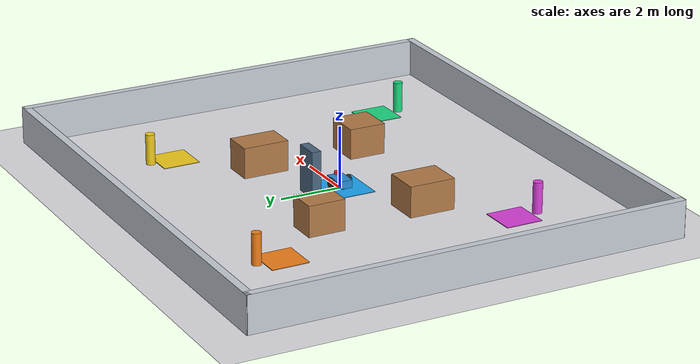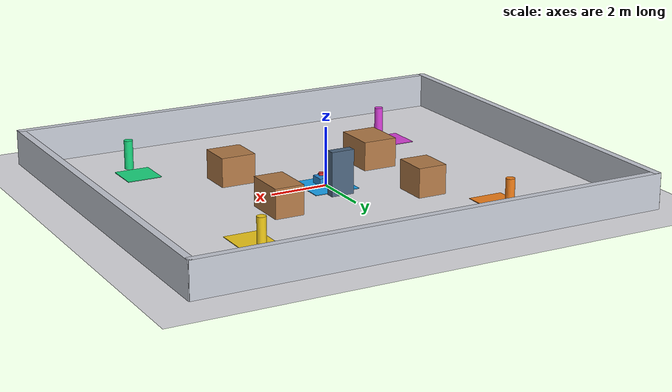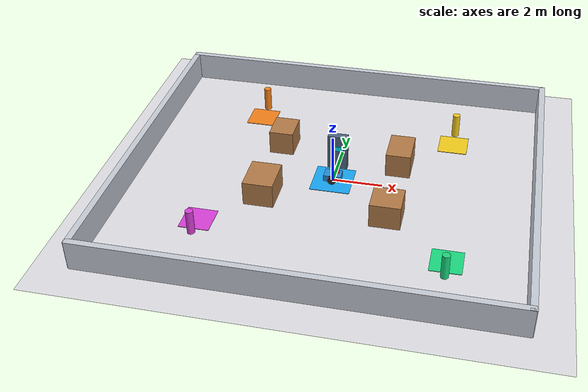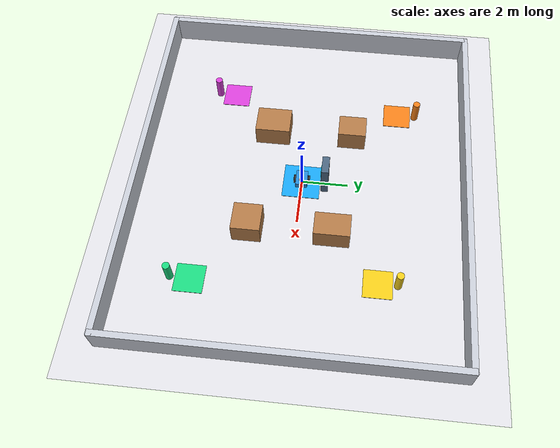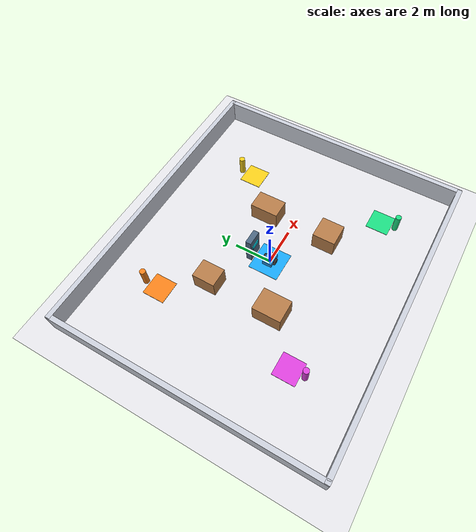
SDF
<?xml version="1.0" ?>
<sdf version="1.9">
  <world name="problem1_battery_world">
    <physics name="1ms" type="ignored">
      <max_step_size>0.001</max_step_size>
      <real_time_factor>1.0</real_time_factor>
    </physics>
    <plugin filename="gz-sim-physics-system" name="gz::sim::systems::Physics"/>
    <plugin filename="gz-sim-user-commands-system" name="gz::sim::systems::UserCommands"/>
    <plugin filename="gz-sim-scene-broadcaster-system" name="gz::sim::systems::SceneBroadcaster"/>
    <plugin filename="gz-sim-sensors-system" name="gz::sim::systems::Sensors">
      <render_engine>ogre</render_engine>
    </plugin>

    <scene>
      <ambient>1.0 1.0 1.0 1</ambient>
      <background>0.90 0.94 0.98 1</background>
      <shadows>false</shadows>
    </scene>
    <light type="directional" name="sun">
      <diffuse>1 1 1 1</diffuse>
      <specular>0.4 0.4 0.4 1</specular>
      <direction>-0.5 0.5 -1</direction>
    </light>

    <!-- Ground Floor -->
    <model name="ground_plane">
      <static>true</static>
      <link name="link">
        <collision name="collision"><geometry><plane><normal>0 0 1</normal><size>40 40</size></plane></geometry></collision>
        <visual name="visual">
          <geometry><plane><normal>0 0 1</normal><size>40 40</size></plane></geometry>
          <material><ambient>0.88 0.88 0.90 1</ambient><diffuse>0.88 0.88 0.90 1</diffuse></material>
        </visual>
      </link>
    </model>

    <!-- Boundary Walls with Ambient + Diffuse -->
    <model name="wall_north">
      <static>true</static><pose>0 7.0 0.6 0 0 0</pose>
      <link name="link">
        <visual name="v"><geometry><box><size>16.2 0.25 1.2</size></box></geometry><material><ambient>0.78 0.80 0.84 1</ambient><diffuse>0.78 0.80 0.84 1</diffuse></material></visual>
        <collision name="c"><geometry><box><size>16.2 0.25 1.2</size></box></geometry></collision>
      </link>
    </model>
    <model name="wall_south">
      <static>true</static><pose>0 -7.0 0.6 0 0 0</pose>
      <link name="link">
        <visual name="v"><geometry><box><size>16.2 0.25 1.2</size></box></geometry><material><ambient>0.78 0.80 0.84 1</ambient><diffuse>0.78 0.80 0.84 1</diffuse></material></visual>
        <collision name="c"><geometry><box><size>16.2 0.25 1.2</size></box></geometry></collision>
      </link>
    </model>
    <model name="wall_east">
      <static>true</static><pose>8.0 0 0.6 0 0 0</pose>
      <link name="link">
        <visual name="v"><geometry><box><size>0.25 14.2 1.2</size></box></geometry><material><ambient>0.78 0.80 0.84 1</ambient><diffuse>0.78 0.80 0.84 1</diffuse></material></visual>
        <collision name="c"><geometry><box><size>0.25 14.2 1.2</size></box></geometry></collision>
      </link>
    </model>
    <model name="wall_west">
      <static>true</static><pose>-8.0 0 0.6 0 0 0</pose>
      <link name="link">
        <visual name="v"><geometry><box><size>0.25 14.2 1.2</size></box></geometry><material><ambient>0.78 0.80 0.84 1</ambient><diffuse>0.78 0.80 0.84 1</diffuse></material></visual>
        <collision name="c"><geometry><box><size>0.25 14.2 1.2</size></box></geometry></collision>
      </link>
    </model>

    <!-- Central Charging Station Dock -->
    <model name="charging_dock_pad">
      <static>true</static><pose>0.0 0.0 0.01 0 0 0</pose>
      <link name="link">
        <visual name="v"><geometry><box><size>1.6 1.6 0.02</size></box></geometry>
          <material><ambient>0.1 0.65 0.95 1</ambient><diffuse>0.1 0.65 0.95 1</diffuse></material>
        </visual>
      </link>
    </model>
    <model name="charging_dock_pylon">
      <static>true</static><pose>0.0 1.0 0.75 0 0 0</pose>
      <link name="link">
        <visual name="v"><geometry><box><size>0.8 0.3 1.5</size></box></geometry>
          <material><ambient>0.3 0.4 0.5 1</ambient><diffuse>0.3 0.4 0.5 1</diffuse></material>
        </visual>
        <visual name="glow"><pose>0 -0.16 0.2 0 0 0</pose><geometry><box><size>0.5 0.05 0.2</size></box></geometry>
          <material><ambient>0.0 0.9 1.0 1</ambient><diffuse>0.0 0.9 1.0 1</diffuse></material>
        </visual>
        <collision name="c"><geometry><box><size>0.8 0.3 1.5</size></box></geometry></collision>
      </link>
    </model>

    <!-- Task Stations -->
    <!-- Task Station 1: Inspection A (Yellow) -->
    <model name="task_station_1">
      <static>true</static><pose>4.5 3.5 0.01 0 0 0</pose>
      <link name="link">
        <visual name="pad"><geometry><box><size>1.2 1.2 0.02</size></box></geometry>
          <material><ambient>0.95 0.8 0.1 1</ambient><diffuse>0.95 0.8 0.1 1</diffuse></material>
        </visual>
        <visual name="pillar"><pose>0 0.8 0.5 0 0 0</pose><geometry><cylinder><radius>0.15</radius><length>1.0</length></cylinder></geometry>
          <material><ambient>0.95 0.8 0.1 1</ambient><diffuse>0.95 0.8 0.1 1</diffuse></material>
        </visual>
        <collision name="c"><pose>0 0.8 0.5 0 0 0</pose><geometry><cylinder><radius>0.15</radius><length>1.0</length></cylinder></geometry></collision>
      </link>
    </model>

    <!-- Task Station 2: Assembly B (Cyan) -->
    <model name="task_station_2">
      <static>true</static><pose>5.0 -4.0 0.01 0 0 0</pose>
      <link name="link">
        <visual name="pad"><geometry><box><size>1.2 1.2 0.02</size></box></geometry>
          <material><ambient>0.1 0.85 0.5 1</ambient><diffuse>0.1 0.85 0.5 1</diffuse></material>
        </visual>
        <visual name="pillar"><pose>0 -0.8 0.5 0 0 0</pose><geometry><cylinder><radius>0.15</radius><length>1.0</length></cylinder></geometry>
          <material><ambient>0.1 0.85 0.5 1</ambient><diffuse>0.1 0.85 0.5 1</diffuse></material>
        </visual>
        <collision name="c"><pose>0 -0.8 0.5 0 0 0</pose><geometry><cylinder><radius>0.15</radius><length>1.0</length></cylinder></geometry></collision>
      </link>
    </model>

    <!-- Task Station 3: Storage C (Magenta) -->
    <model name="task_station_3">
      <static>true</static><pose>-4.5 -3.5 0.01 0 0 0</pose>
      <link name="link">
        <visual name="pad"><geometry><box><size>1.2 1.2 0.02</size></box></geometry>
          <material><ambient>0.85 0.25 0.85 1</ambient><diffuse>0.85 0.25 0.85 1</diffuse></material>
        </visual>
        <visual name="pillar"><pose>0 -0.8 0.5 0 0 0</pose><geometry><cylinder><radius>0.15</radius><length>1.0</length></cylinder></geometry>
          <material><ambient>0.85 0.25 0.85 1</ambient><diffuse>0.85 0.25 0.85 1</diffuse></material>
        </visual>
        <collision name="c"><pose>0 -0.8 0.5 0 0 0</pose><geometry><cylinder><radius>0.15</radius><length>1.0</length></cylinder></geometry></collision>
      </link>
    </model>

    <!-- Task Station 4: Quality D (Orange) -->
    <model name="task_station_4">
      <static>true</static><pose>-4.0 4.0 0.01 0 0 0</pose>
      <link name="link">
        <visual name="pad"><geometry><box><size>1.2 1.2 0.02</size></box></geometry>
          <material><ambient>0.95 0.5 0.1 1</ambient><diffuse>0.95 0.5 0.1 1</diffuse></material>
        </visual>
        <visual name="pillar"><pose>0 0.8 0.5 0 0 0</pose><geometry><cylinder><radius>0.15</radius><length>1.0</length></cylinder></geometry>
          <material><ambient>0.95 0.5 0.1 1</ambient><diffuse>0.95 0.5 0.1 1</diffuse></material>
        </visual>
        <collision name="c"><pose>0 0.8 0.5 0 0 0</pose><geometry><cylinder><radius>0.15</radius><length>1.0</length></cylinder></geometry></collision>
      </link>
    </model>

    <!-- Warehouse Interior Obstacles (Warm Cargo Boxes) -->
    <model name="crate_obs_1">
      <static>true</static><pose>2.5 1.5 0.5 0 0 0</pose>
      <link name="link">
        <visual name="v"><geometry><box><size>1.0 1.5 1.0</size></box></geometry><material><ambient>0.7 0.48 0.28 1</ambient><diffuse>0.7 0.48 0.28 1</diffuse></material></visual>
        <collision name="c"><geometry><box><size>1.0 1.5 1.0</size></box></geometry></collision>
      </link>
    </model>
    <model name="crate_obs_2">
      <static>true</static><pose>2.5 -2.0 0.5 0 0 0</pose>
      <link name="link">
        <visual name="v"><geometry><box><size>1.2 1.2 1.0</size></box></geometry><material><ambient>0.7 0.48 0.28 1</ambient><diffuse>0.7 0.48 0.28 1</diffuse></material></visual>
        <collision name="c"><geometry><box><size>1.2 1.2 1.0</size></box></geometry></collision>
      </link>
    </model>
    <model name="crate_obs_3">
      <static>true</static><pose>-2.5 -1.5 0.5 0 0 0</pose>
      <link name="link">
        <visual name="v"><geometry><box><size>1.2 1.5 1.0</size></box></geometry><material><ambient>0.7 0.48 0.28 1</ambient><diffuse>0.7 0.48 0.28 1</diffuse></material></visual>
        <collision name="c"><geometry><box><size>1.2 1.5 1.0</size></box></geometry></collision>
      </link>
    </model>
    <model name="crate_obs_4">
      <static>true</static><pose>-2.5 2.0 0.5 0 0 0</pose>
      <link name="link">
        <visual name="v"><geometry><box><size>1.0 1.2 1.0</size></box></geometry><material><ambient>0.7 0.48 0.28 1</ambient><diffuse>0.7 0.48 0.28 1</diffuse></material></visual>
        <collision name="c"><geometry><box><size>1.0 1.2 1.0</size></box></geometry></collision>
      </link>
    </model>

    <!-- Mobile Robot with Dual Casters -->
    <model name="battery_robot">
      <pose>0.0 0.0 0.22 0 0 0</pose>
      <link name="base_link">
        <inertial><mass>1.2</mass><inertia><ixx>0.04</ixx><iyy>0.08</iyy><izz>0.10</izz></inertia></inertial>
        <collision name="c"><geometry><box><size>0.7 0.5 0.25</size></box></geometry></collision>
        <visual name="v"><geometry><box><size>0.7 0.5 0.25</size></box></geometry>
          <material><ambient>0.15 0.55 0.85 1</ambient><diffuse>0.15 0.55 0.85 1</diffuse></material>
        </visual>
      </link>

      <link name="left_wheel">
        <pose>0 0.30 -0.02 0 0 0</pose>
        <inertial><mass>0.2</mass><inertia><ixx>0.003</ixx><iyy>0.003</iyy><izz>0.003</izz></inertia></inertial>
        <collision name="c"><pose>0 0 0 1.5708 0 0</pose><geometry><cylinder><radius>0.18</radius><length>0.08</length></cylinder></geometry>
          <surface><friction><ode><mu>10.0</mu><mu2>10.0</mu2></ode></friction></surface>
        </collision>
        <visual name="v"><pose>0 0 0 1.5708 0 0</pose><geometry><cylinder><radius>0.18</radius><length>0.08</length></cylinder></geometry>
          <material><ambient>0.15 0.15 0.15 1</ambient><diffuse>0.15 0.15 0.15 1</diffuse></material>
        </visual>
      </link>

      <link name="right_wheel">
        <pose>0 -0.30 -0.02 0 0 0</pose>
        <inertial><mass>0.2</mass><inertia><ixx>0.003</ixx><iyy>0.003</iyy><izz>0.003</izz></inertia></inertial>
        <collision name="c"><pose>0 0 0 1.5708 0 0</pose><geometry><cylinder><radius>0.18</radius><length>0.08</length></cylinder></geometry>
          <surface><friction><ode><mu>10.0</mu><mu2>10.0</mu2></ode></friction></surface>
        </collision>
        <visual name="v"><pose>0 0 0 1.5708 0 0</pose><geometry><cylinder><radius>0.18</radius><length>0.08</length></cylinder></geometry>
          <material><ambient>0.15 0.15 0.15 1</ambient><diffuse>0.15 0.15 0.15 1</diffuse></material>
        </visual>
      </link>

      <link name="caster_front">
        <pose>0.25 0 -0.10 0 0 0</pose>
        <inertial><mass>0.05</mass><inertia><ixx>0.0001</ixx><iyy>0.0001</iyy><izz>0.0001</izz></inertia></inertial>
        <collision name="c"><geometry><sphere><radius>0.08</radius></sphere></geometry>
          <surface><friction><ode><mu>0.01</mu><mu2>0.01</mu2></ode></friction></surface>
        </collision>
        <visual name="v"><geometry><sphere><radius>0.08</radius></sphere></geometry>
          <material><ambient>0.3 0.3 0.3 1</ambient><diffuse>0.3 0.3 0.3 1</diffuse></material>
        </visual>
      </link>

      <link name="caster_rear">
        <pose>-0.25 0 -0.10 0 0 0</pose>
        <inertial><mass>0.05</mass><inertia><ixx>0.0001</ixx><iyy>0.0001</iyy><izz>0.0001</izz></inertia></inertial>
        <collision name="c"><geometry><sphere><radius>0.08</radius></sphere></geometry>
          <surface><friction><ode><mu>0.01</mu><mu2>0.01</mu2></ode></friction></surface>
        </collision>
        <visual name="v"><geometry><sphere><radius>0.08</radius></sphere></geometry>
          <material><ambient>0.3 0.3 0.3 1</ambient><diffuse>0.3 0.3 0.3 1</diffuse></material>
        </visual>
      </link>

      <link name="lidar_link">
        <pose>0.18 0 0.22 0 0 0</pose>
        <inertial><mass>0.08</mass><inertia><ixx>0.0001</ixx><iyy>0.0001</iyy><izz>0.0001</izz></inertia></inertial>
        <visual name="v"><geometry><cylinder><radius>0.09</radius><length>0.08</length></cylinder></geometry>
          <material><ambient>0.9 0.2 0.2 1</ambient><diffuse>0.9 0.2 0.2 1</diffuse></material>
        </visual>
        <sensor name="lidar" type="gpu_lidar">
          <always_on>true</always_on>
          <visualize>true</visualize>
          <update_rate>10</update_rate>
          <topic>/problem1/scan</topic>
          <lidar>
            <scan>
              <horizontal>
                <samples>180</samples>
                <resolution>1</resolution>
                <min_angle>-3.14159</min_angle>
                <max_angle>3.14159</max_angle>
              </horizontal>
            </scan>
            <range><min>0.25</min><max>10.0</max><resolution>0.03</resolution></range>
          </lidar>
        </sensor>
      </link>

      <joint name="lwj" type="revolute"><parent>base_link</parent><child>left_wheel</child><axis><xyz>0 1 0</xyz></axis></joint>
      <joint name="rwj" type="revolute"><parent>base_link</parent><child>right_wheel</child><axis><xyz>0 1 0</xyz></axis></joint>
      <joint name="cfj" type="fixed"><parent>base_link</parent><child>caster_front</child></joint>
      <joint name="crj" type="fixed"><parent>base_link</parent><child>caster_rear</child></joint>
      <joint name="lj" type="fixed"><parent>base_link</parent><child>lidar_link</child></joint>

      <plugin filename="gz-sim-diff-drive-system" name="gz::sim::systems::DiffDrive">
        <left_joint>lwj</left_joint>
        <right_joint>rwj</right_joint>
        <wheel_separation>0.60</wheel_separation>
        <wheel_radius>0.18</wheel_radius>
        <odom_publish_frequency>30</odom_publish_frequency>
        <odom_topic>/problem1/odometry</odom_topic>
        <topic>/problem1/cmd_vel</topic>
      </plugin>
    </model>
  </world>
</sdf>
